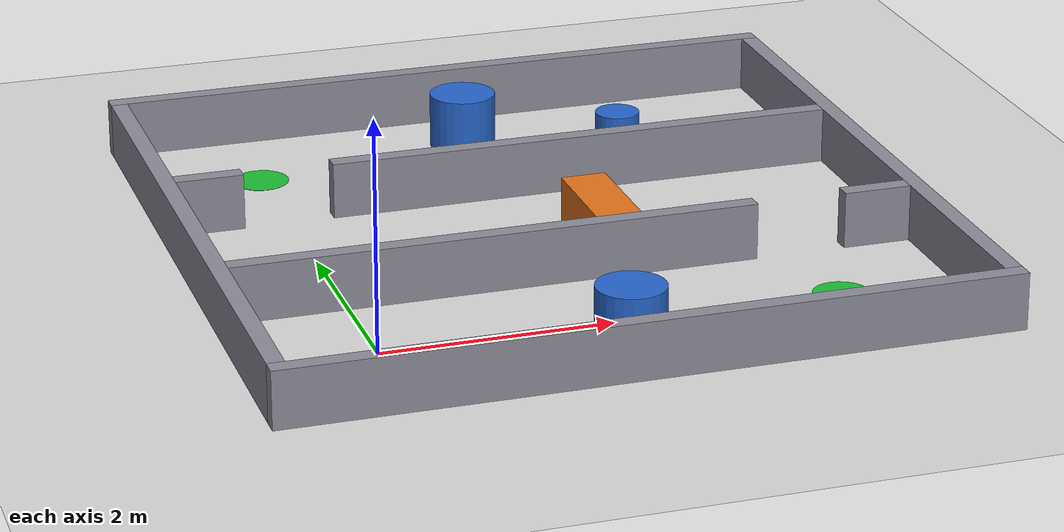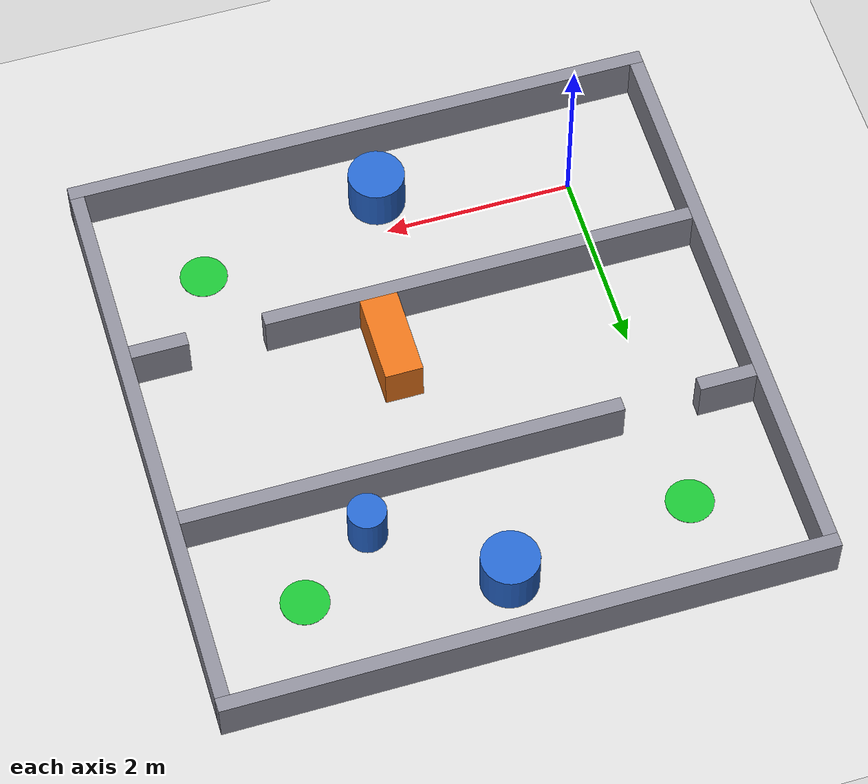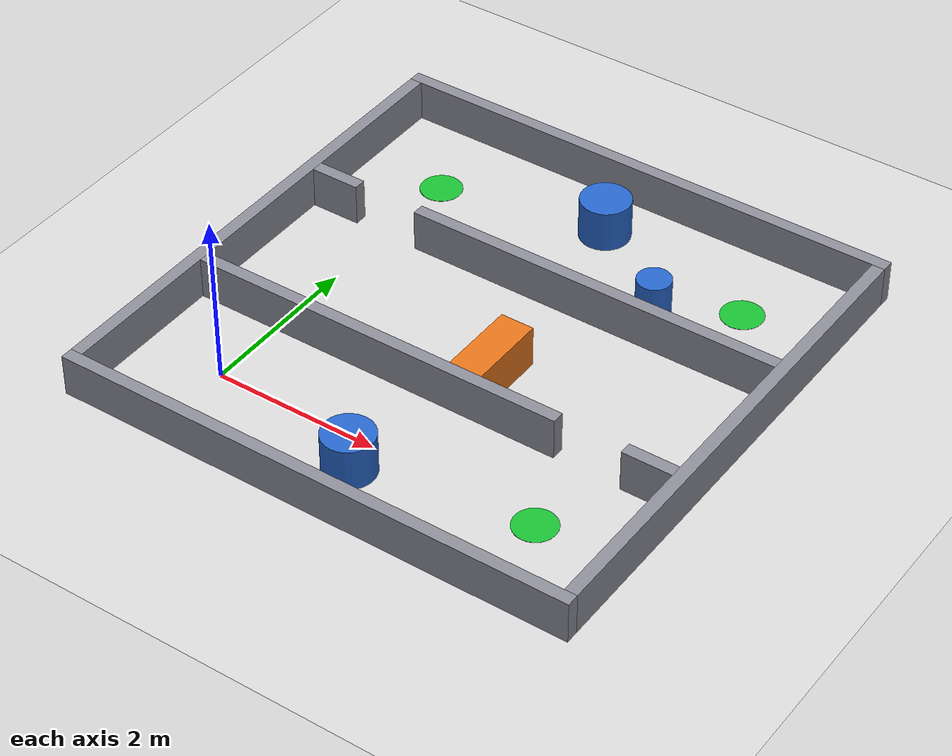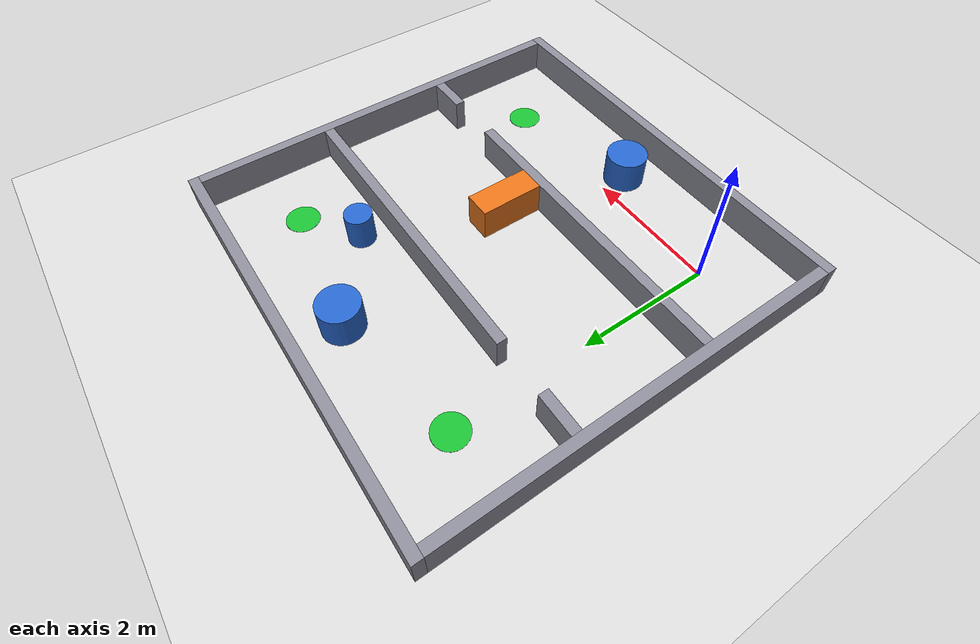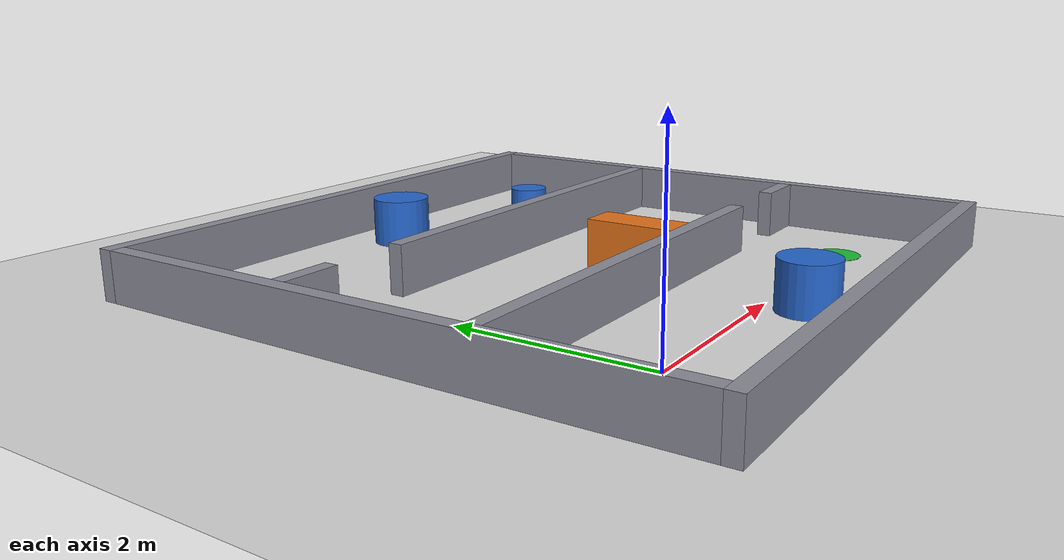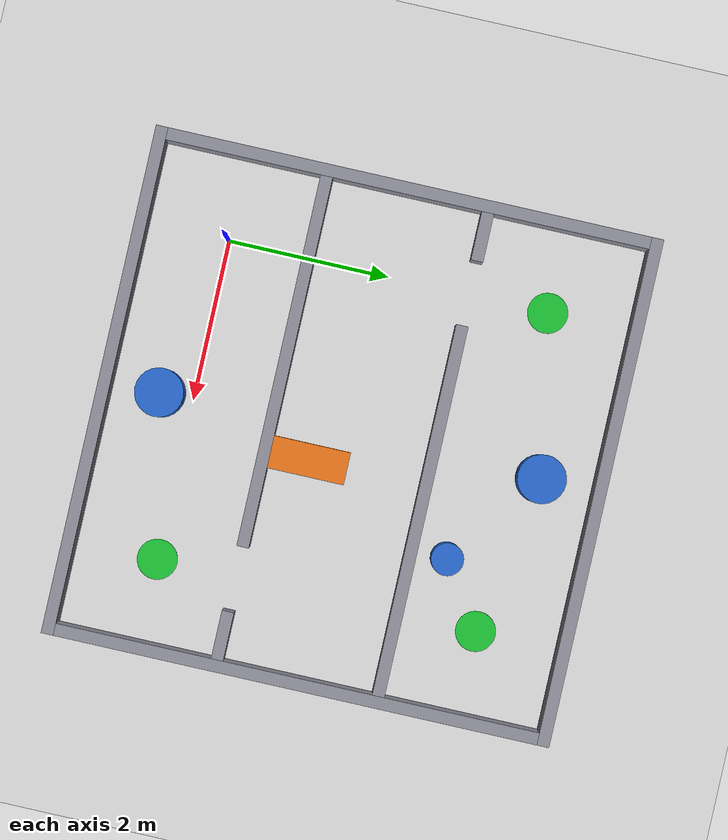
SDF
<?xml version="1.0"?>
<sdf version="1.6">
  <world name="senaryo2">

    <physics type="ode">
      <real_time_update_rate>1000.0</real_time_update_rate>
      <max_step_size>0.001</max_step_size>
      <real_time_factor>1</real_time_factor>
      <ode>
        <solver>
          <type>quick</type>
          <iters>150</iters>
          <precon_iters>0</precon_iters>
          <sor>1.400000</sor>
          <use_dynamic_moi_rescaling>1</use_dynamic_moi_rescaling>
        </solver>
        <constraints>
          <cfm>0.00001</cfm>
          <erp>0.2</erp>
          <contact_max_correcting_vel>2000.000000</contact_max_correcting_vel>
          <contact_surface_layer>0.01000</contact_surface_layer>
        </constraints>
      </ode>
    </physics>

    <scene>
      <ambient>0.4 0.4 0.4 1</ambient>
      <background>0.7 0.7 0.7 1</background>
      <shadows>false</shadows>
    </scene>

    <gui fullscreen="0">
      <camera name="user_camera">
        <pose>2.0 -2.6 6.2 0 0.9 1.5708</pose>
        <view_controller>orbit</view_controller>
        <projection_type>perspective</projection_type>
      </camera>
    </gui>

    <light name="sun" type="directional">
      <cast_shadows>false</cast_shadows>
      <pose>0 0 10 0 0 0</pose>
      <diffuse>0.8 0.8 0.8 1</diffuse>
      <specular>0.2 0.2 0.2 1</specular>
      <attenuation>
        <range>1000</range>
        <constant>0.9</constant>
        <linear>0.01</linear>
        <quadratic>0.001</quadratic>
      </attenuation>
      <direction>-0.5 0.1 -0.9</direction>
    </light>

    <model name="ground_plane">
      <static>true</static>
      <link name="link">
        <collision name="collision">
          <geometry>
            <plane><normal>0 0 1</normal><size>100 100</size></plane>
          </geometry>
          <surface>
            <friction><ode><mu>100</mu><mu2>50</mu2></ode></friction>
          </surface>
        </collision>
        <visual name="visual">
          <cast_shadows>false</cast_shadows>
          <geometry>
            <plane><normal>0 0 1</normal><size>100 100</size></plane>
          </geometry>
          <material>
            <ambient>0.85 0.85 0.85 1</ambient>
            <diffuse>0.85 0.85 0.85 1</diffuse>
          </material>
        </visual>
      </link>
    </model>

    <!-- Oda: iç yüzeyler x = -1, x = 5, y = -1, y = 5. Kalınlık 0.15 m, yükseklik 0.5 m. -->
    <model name="oda">
      <static>true</static>
      <link name="duvarlar">
        <collision name="guney_c">
          <pose>2.0 -1.075 0.25 0 0 0</pose>
          <geometry><box><size>6.3 0.15 0.5</size></box></geometry>
        </collision>
        <visual name="guney_v">
          <pose>2.0 -1.075 0.25 0 0 0</pose>
          <geometry><box><size>6.3 0.15 0.5</size></box></geometry>
          <material>
            <ambient>0.55 0.55 0.6 1</ambient>
            <diffuse>0.55 0.55 0.6 1</diffuse>
          </material>
        </visual>
        <collision name="kuzey_c">
          <pose>2.0 5.075 0.25 0 0 0</pose>
          <geometry><box><size>6.3 0.15 0.5</size></box></geometry>
        </collision>
        <visual name="kuzey_v">
          <pose>2.0 5.075 0.25 0 0 0</pose>
          <geometry><box><size>6.3 0.15 0.5</size></box></geometry>
          <material>
            <ambient>0.55 0.55 0.6 1</ambient>
            <diffuse>0.55 0.55 0.6 1</diffuse>
          </material>
        </visual>
        <collision name="bati_c">
          <pose>-1.075 2.0 0.25 0 0 0</pose>
          <geometry><box><size>0.15 6.0 0.5</size></box></geometry>
        </collision>
        <visual name="bati_v">
          <pose>-1.075 2.0 0.25 0 0 0</pose>
          <geometry><box><size>0.15 6.0 0.5</size></box></geometry>
          <material>
            <ambient>0.55 0.55 0.6 1</ambient>
            <diffuse>0.55 0.55 0.6 1</diffuse>
          </material>
        </visual>
        <collision name="dogu_c">
          <pose>5.075 2.0 0.25 0 0 0</pose>
          <geometry><box><size>0.15 6.0 0.5</size></box></geometry>
        </collision>
        <visual name="dogu_v">
          <pose>5.075 2.0 0.25 0 0 0</pose>
          <geometry><box><size>0.15 6.0 0.5</size></box></geometry>
          <material>
            <ambient>0.55 0.55 0.6 1</ambient>
            <diffuse>0.55 0.55 0.6 1</diffuse>
          </material>
        </visual>
      </link>
    </model>

    <!-- İç duvarlar (zikzak koridor). Kalınlık 0.15 m; uçları oda duvarına değer. -->
    <model name="ic_duvarlar">
      <static>true</static>
      <link name="duvarlar">
        <!-- duvar_1: x ∈ [-1, 3.6] ve [4.4, 5] -->
        <collision name="duvar_1a_c">
          <pose>1.3 1.0 0.25 0 0 0</pose>
          <geometry><box><size>4.6 0.15 0.5</size></box></geometry>
        </collision>
        <visual name="duvar_1a_v">
          <pose>1.3 1.0 0.25 0 0 0</pose>
          <geometry><box><size>4.6 0.15 0.5</size></box></geometry>
          <material>
            <ambient>0.55 0.55 0.6 1</ambient>
            <diffuse>0.55 0.55 0.6 1</diffuse>
          </material>
        </visual>
        <collision name="duvar_1b_c">
          <pose>4.7 1.0 0.25 0 0 0</pose>
          <geometry><box><size>0.6 0.15 0.5</size></box></geometry>
        </collision>
        <visual name="duvar_1b_v">
          <pose>4.7 1.0 0.25 0 0 0</pose>
          <geometry><box><size>0.6 0.15 0.5</size></box></geometry>
          <material>
            <ambient>0.55 0.55 0.6 1</ambient>
            <diffuse>0.55 0.55 0.6 1</diffuse>
          </material>
        </visual>
        <!-- duvar_2: x ∈ [-1, -0.4] ve [0.4, 5] -->
        <collision name="duvar_2a_c">
          <pose>-0.7 3.0 0.25 0 0 0</pose>
          <geometry><box><size>0.6 0.15 0.5</size></box></geometry>
        </collision>
        <visual name="duvar_2a_v">
          <pose>-0.7 3.0 0.25 0 0 0</pose>
          <geometry><box><size>0.6 0.15 0.5</size></box></geometry>
          <material>
            <ambient>0.55 0.55 0.6 1</ambient>
            <diffuse>0.55 0.55 0.6 1</diffuse>
          </material>
        </visual>
        <collision name="duvar_2b_c">
          <pose>2.7 3.0 0.25 0 0 0</pose>
          <geometry><box><size>4.6 0.15 0.5</size></box></geometry>
        </collision>
        <visual name="duvar_2b_v">
          <pose>2.7 3.0 0.25 0 0 0</pose>
          <geometry><box><size>4.6 0.15 0.5</size></box></geometry>
          <material>
            <ambient>0.55 0.55 0.6 1</ambient>
            <diffuse>0.55 0.55 0.6 1</diffuse>
          </material>
        </visual>
      </link>
    </model>

    <!-- Alt koridor: (0, 0) → (4, 0) doğrusunu kapatır; güneyi 0.3 m (geçilmez), kuzeyi 1.0 m. -->
    <model name="silindir_1">
      <static>true</static>
      <pose>2.0 -0.4 0.25 0 0 0</pose>
      <link name="link">
        <collision name="collision">
          <geometry><cylinder><radius>0.3</radius><length>0.5</length></cylinder></geometry>
        </collision>
        <visual name="visual">
          <geometry><cylinder><radius>0.3</radius><length>0.5</length></cylinder></geometry>
          <material>
            <ambient>0.15 0.4 0.8 1</ambient>
            <diffuse>0.15 0.4 0.8 1</diffuse>
          </material>
        </visual>
      </link>
    </model>

    <!-- Orta koridor: duvar_1'e yaslı kutu; kapılar arasındaki çapraz rotayı kapatır, üstünde
         duvar_2'ye 0.9 m dar geçit kalır. -->
    <model name="kutu_1">
      <static>true</static>
      <pose>2.4 1.55 0.25 0 0 0</pose>
      <link name="link">
        <collision name="collision">
          <geometry><box><size>0.4 0.95 0.5</size></box></geometry>
        </collision>
        <visual name="visual">
          <geometry><box><size>0.4 0.95 0.5</size></box></geometry>
          <material>
            <ambient>0.9 0.45 0.1 1</ambient>
            <diffuse>0.9 0.45 0.1 1</diffuse>
          </material>
        </visual>
      </link>
    </model>

    <!-- Üst koridor slalomu: silindir_2 kuzeye, silindir_3 güneye yaslı; aralarında 1.0 m. -->
    <model name="silindir_2">
      <static>true</static>
      <pose>2.0 4.35 0.25 0 0 0</pose>
      <link name="link">
        <collision name="collision">
          <geometry><cylinder><radius>0.3</radius><length>0.5</length></cylinder></geometry>
        </collision>
        <visual name="visual">
          <geometry><cylinder><radius>0.3</radius><length>0.5</length></cylinder></geometry>
          <material>
            <ambient>0.15 0.4 0.8 1</ambient>
            <diffuse>0.15 0.4 0.8 1</diffuse>
          </material>
        </visual>
      </link>
    </model>

    <model name="silindir_3">
      <static>true</static>
      <pose>3.2 3.45 0.25 0 0 0</pose>
      <link name="link">
        <collision name="collision">
          <geometry><cylinder><radius>0.2</radius><length>0.5</length></cylinder></geometry>
        </collision>
        <visual name="visual">
          <geometry><cylinder><radius>0.2</radius><length>0.5</length></cylinder></geometry>
          <material>
            <ambient>0.15 0.4 0.8 1</ambient>
            <diffuse>0.15 0.4 0.8 1</diffuse>
          </material>
        </visual>
      </link>
    </model>

    <!-- Hedef bölgeleri: yalnızca görsel (collision yok → LiDAR görmez, robot üstünden geçer). -->
    <model name="hedef_1">
      <static>true</static>
      <pose>4.0 0.0 0.002 0 0 0</pose>
      <link name="link">
        <visual name="visual">
          <geometry><cylinder><radius>0.25</radius><length>0.004</length></cylinder></geometry>
          <material>
            <ambient>0.1 0.75 0.2 1</ambient>
            <diffuse>0.1 0.75 0.2 1</diffuse>
          </material>
        </visual>
      </link>
    </model>

    <model name="hedef_2">
      <static>true</static>
      <pose>4.0 4.0 0.002 0 0 0</pose>
      <link name="link">
        <visual name="visual">
          <geometry><cylinder><radius>0.25</radius><length>0.004</length></cylinder></geometry>
          <material>
            <ambient>0.1 0.75 0.2 1</ambient>
            <diffuse>0.1 0.75 0.2 1</diffuse>
          </material>
        </visual>
      </link>
    </model>

    <model name="hedef_3">
      <static>true</static>
      <pose>0.0 4.0 0.002 0 0 0</pose>
      <link name="link">
        <visual name="visual">
          <geometry><cylinder><radius>0.25</radius><length>0.004</length></cylinder></geometry>
          <material>
            <ambient>0.1 0.75 0.2 1</ambient>
            <diffuse>0.1 0.75 0.2 1</diffuse>
          </material>
        </visual>
      </link>
    </model>

  </world>
</sdf>
